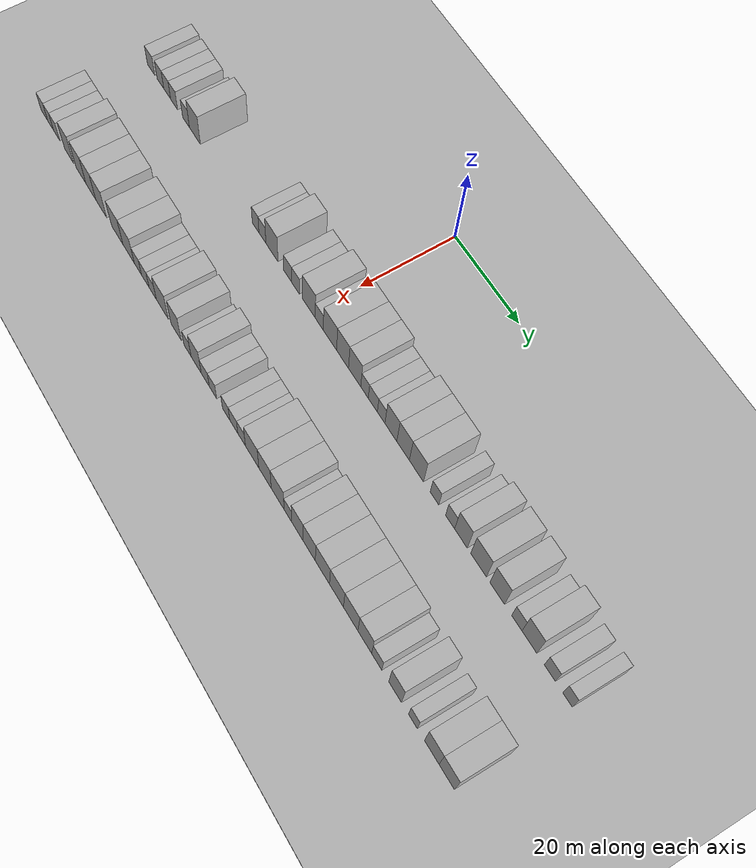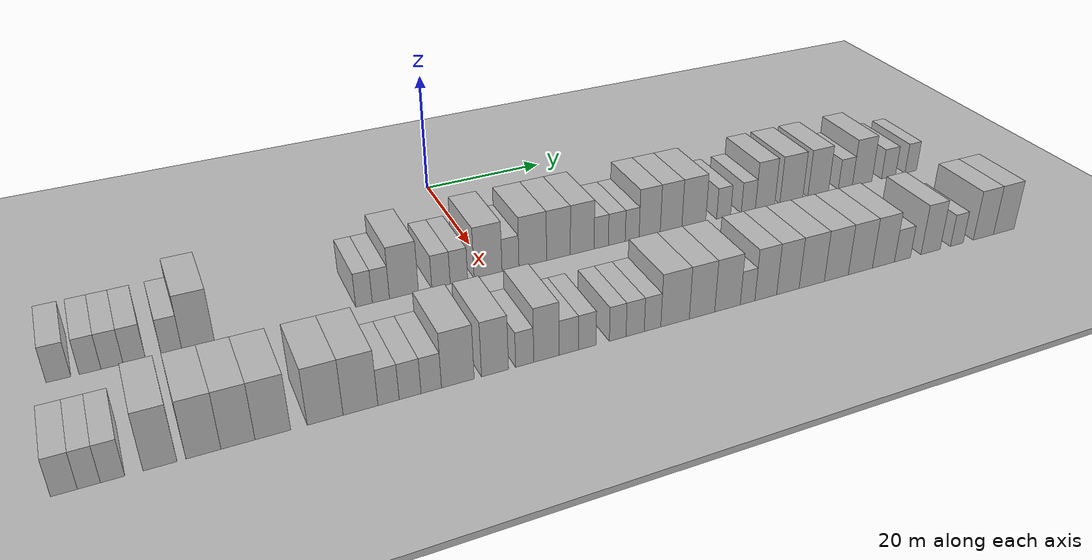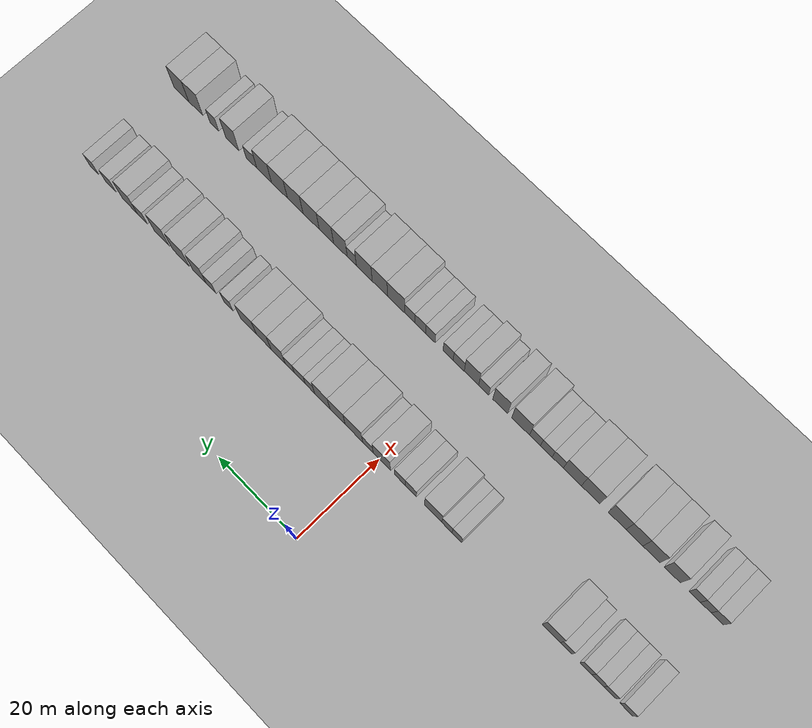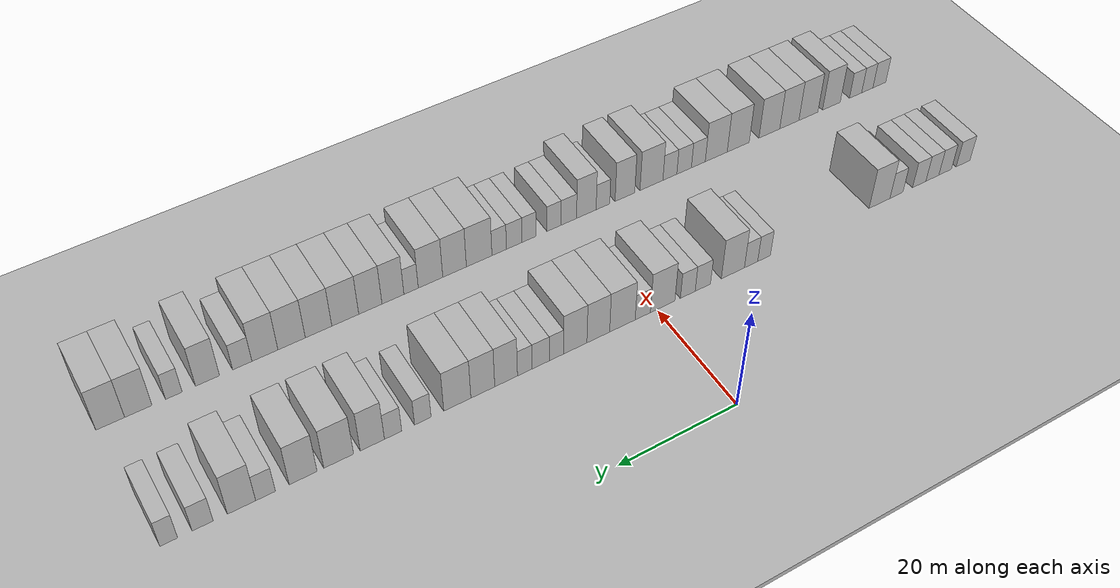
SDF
<sdf version="1.6">
 <world name="default">
  <include><name>ground_plane_1</name><uri>model://HANNAS_ground_plane</uri></include>
  <include>
   <name>ground_plane_2</name>
   <uri>model://HANNAS_ground_plane</uri>
   <pose>100 0 0  0 0 0</pose>
  </include>
  <model name="building_33">
   <static>1</static>
   <pose>25.0000 -59.6118 0 0.000000 0.000000 0.000000</pose>
   <link name="link">
    <pose>0 0 3.00 0 0 0</pose>
    <collision name="collision"><geometry><box><size>10.0000 2.9667 6.0000</size></box></geometry></collision>
    <visual name="visual">
     <cast_shadows>0</cast_shadows>
     <geometry><box><size>10.0000 2.9667 6.0000</size></box></geometry>
     <material>
      <script>
       <uri>model://HANNAS_wall/materials/scripts</uri>
       <uri>model://HANNAS_wall/materials/textures</uri>
       <name>vrc/HANNAS_wall</name>
      </script>
     </material>
    </visual>
   </link>
  </model>
  <model name="building_34">
   <static>1</static>
   <pose>25.0000 -55.7953 0 0.000000 0.000000 0.000000</pose>
   <link name="link">
    <pose>0 0 3.00 0 0 0</pose>
    <collision name="collision"><geometry><box><size>10.0000 2.6663 6.0000</size></box></geometry></collision>
    <visual name="visual">
     <cast_shadows>0</cast_shadows>
     <geometry><box><size>10.0000 2.6663 6.0000</size></box></geometry>
     <material>
      <script>
       <uri>model://HANNAS_wall/materials/scripts</uri>
       <uri>model://HANNAS_wall/materials/textures</uri>
       <name>vrc/HANNAS_wall</name>
      </script>
     </material>
    </visual>
   </link>
  </model>
  <model name="building_35">
   <static>1</static>
   <pose>25.0000 -53.0980 0 0.000000 0.000000 0.000000</pose>
   <link name="link">
    <pose>0 0 3.00 0 0 0</pose>
    <collision name="collision"><geometry><box><size>10.0000 2.7282 6.0000</size></box></geometry></collision>
    <visual name="visual">
     <cast_shadows>0</cast_shadows>
     <geometry><box><size>10.0000 2.7282 6.0000</size></box></geometry>
     <material>
      <script>
       <uri>model://HANNAS_wall/materials/scripts</uri>
       <uri>model://HANNAS_wall/materials/textures</uri>
       <name>vrc/HANNAS_wall</name>
      </script>
     </material>
    </visual>
   </link>
  </model>
  <model name="building_36">
   <static>1</static>
   <pose>25.0000 -50.3425 0 0.000000 0.000000 0.000000</pose>
   <link name="link">
    <pose>0 0 3.00 0 0 0</pose>
    <collision name="collision"><geometry><box><size>10.0000 2.7828 6.0000</size></box></geometry></collision>
    <visual name="visual">
     <cast_shadows>0</cast_shadows>
     <geometry><box><size>10.0000 2.7828 6.0000</size></box></geometry>
     <material>
      <script>
       <uri>model://HANNAS_wall/materials/scripts</uri>
       <uri>model://HANNAS_wall/materials/textures</uri>
       <name>vrc/HANNAS_wall</name>
      </script>
     </material>
    </visual>
   </link>
  </model>
  <model name="building_37">
   <static>1</static>
   <pose>25.0000 -45.6284 0 0.000000 0.000000 0.000000</pose>
   <link name="link">
    <pose>0 0 3.00 0 0 0</pose>
    <collision name="collision"><geometry><box><size>10.0000 2.6455 6.0000</size></box></geometry></collision>
    <visual name="visual">
     <cast_shadows>0</cast_shadows>
     <geometry><box><size>10.0000 2.6455 6.0000</size></box></geometry>
     <material>
      <script>
       <uri>model://HANNAS_wall/materials/scripts</uri>
       <uri>model://HANNAS_wall/materials/textures</uri>
       <name>vrc/HANNAS_wall</name>
      </script>
     </material>
    </visual>
   </link>
  </model>
  <model name="building_38">
   <static>1</static>
   <pose>25.0000 -42.1798 0 0.000000 0.000000 0.000000</pose>
   <link name="link">
    <pose>0 0 4.50 0 0 0</pose>
    <collision name="collision"><geometry><box><size>10.0000 4.2517 9.0000</size></box></geometry></collision>
    <visual name="visual">
     <cast_shadows>0</cast_shadows>
     <geometry><box><size>10.0000 4.2517 9.0000</size></box></geometry>
     <material>
      <script>
       <uri>model://HANNAS_wall/materials/scripts</uri>
       <uri>model://HANNAS_wall/materials/textures</uri>
       <name>vrc/HANNAS_wall</name>
      </script>
     </material>
    </visual>
   </link>
  </model>
  <model name="building_39">
   <static>1</static>
   <pose>25.0000 -19.4496 0 0.000000 0.000000 0.000000</pose>
   <link name="link">
    <pose>0 0 3.00 0 0 0</pose>
    <collision name="collision"><geometry><box><size>10.0000 2.4029 6.0000</size></box></geometry></collision>
    <visual name="visual">
     <cast_shadows>0</cast_shadows>
     <geometry><box><size>10.0000 2.4029 6.0000</size></box></geometry>
     <material>
      <script>
       <uri>model://HANNAS_wall/materials/scripts</uri>
       <uri>model://HANNAS_wall/materials/textures</uri>
       <name>vrc/HANNAS_wall</name>
      </script>
     </material>
    </visual>
   </link>
  </model>
  <model name="building_40">
   <static>1</static>
   <pose>25.0000 -16.9956 0 0.000000 0.000000 0.000000</pose>
   <link name="link">
    <pose>0 0 3.00 0 0 0</pose>
    <collision name="collision"><geometry><box><size>10.0000 2.5051 6.0000</size></box></geometry></collision>
    <visual name="visual">
     <cast_shadows>0</cast_shadows>
     <geometry><box><size>10.0000 2.5051 6.0000</size></box></geometry>
     <material>
      <script>
       <uri>model://HANNAS_wall/materials/scripts</uri>
       <uri>model://HANNAS_wall/materials/textures</uri>
       <name>vrc/HANNAS_wall</name>
      </script>
     </material>
    </visual>
   </link>
  </model>
  <model name="building_41">
   <static>1</static>
   <pose>25.0000 -13.5917 0 0.000000 0.000000 0.000000</pose>
   <link name="link">
    <pose>0 0 4.50 0 0 0</pose>
    <collision name="collision"><geometry><box><size>10.0000 4.3028 9.0000</size></box></geometry></collision>
    <visual name="visual">
     <cast_shadows>0</cast_shadows>
     <geometry><box><size>10.0000 4.3028 9.0000</size></box></geometry>
     <material>
      <script>
       <uri>model://HANNAS_wall/materials/scripts</uri>
       <uri>model://HANNAS_wall/materials/textures</uri>
       <name>vrc/HANNAS_wall</name>
      </script>
     </material>
    </visual>
   </link>
  </model>
  <model name="building_42">
   <static>1</static>
   <pose>25.0000 -8.0424 0 0.000000 0.000000 0.000000</pose>
   <link name="link">
    <pose>0 0 3.00 0 0 0</pose>
    <collision name="collision"><geometry><box><size>10.0000 2.7958 6.0000</size></box></geometry></collision>
    <visual name="visual">
     <cast_shadows>0</cast_shadows>
     <geometry><box><size>10.0000 2.7958 6.0000</size></box></geometry>
     <material>
      <script>
       <uri>model://HANNAS_wall/materials/scripts</uri>
       <uri>model://HANNAS_wall/materials/textures</uri>
       <name>vrc/HANNAS_wall</name>
      </script>
     </material>
    </visual>
   </link>
  </model>
  <model name="building_43">
   <static>1</static>
   <pose>25.0000 -5.2995 0 0.000000 0.000000 0.000000</pose>
   <link name="link">
    <pose>0 0 3.00 0 0 0</pose>
    <collision name="collision"><geometry><box><size>10.0000 2.6900 6.0000</size></box></geometry></collision>
    <visual name="visual">
     <cast_shadows>0</cast_shadows>
     <geometry><box><size>10.0000 2.6900 6.0000</size></box></geometry>
     <material>
      <script>
       <uri>model://HANNAS_wall/materials/scripts</uri>
       <uri>model://HANNAS_wall/materials/textures</uri>
       <name>vrc/HANNAS_wall</name>
      </script>
     </material>
    </visual>
   </link>
  </model>
  <model name="building_44">
   <static>1</static>
   <pose>25.0000 -0.7623 0 0.000000 0.000000 0.000000</pose>
   <link name="link">
    <pose>0 0 4.50 0 0 0</pose>
    <collision name="collision"><geometry><box><size>10.0000 4.3845 9.0000</size></box></geometry></collision>
    <visual name="visual">
     <cast_shadows>0</cast_shadows>
     <geometry><box><size>10.0000 4.3845 9.0000</size></box></geometry>
     <material>
      <script>
       <uri>model://HANNAS_wall/materials/scripts</uri>
       <uri>model://HANNAS_wall/materials/textures</uri>
       <name>vrc/HANNAS_wall</name>
      </script>
     </material>
    </visual>
   </link>
  </model>
  <model name="building_45">
   <static>1</static>
   <pose>25.0000 2.7781 0 0.000000 0.000000 0.000000</pose>
   <link name="link">
    <pose>0 0 3.00 0 0 0</pose>
    <collision name="collision"><geometry><box><size>10.0000 2.6963 6.0000</size></box></geometry></collision>
    <visual name="visual">
     <cast_shadows>0</cast_shadows>
     <geometry><box><size>10.0000 2.6963 6.0000</size></box></geometry>
     <material>
      <script>
       <uri>model://HANNAS_wall/materials/scripts</uri>
       <uri>model://HANNAS_wall/materials/textures</uri>
       <name>vrc/HANNAS_wall</name>
      </script>
     </material>
    </visual>
   </link>
  </model>
  <model name="building_46">
   <static>1</static>
   <pose>25.0000 6.3581 0 0.000000 0.000000 0.000000</pose>
   <link name="link">
    <pose>0 0 4.50 0 0 0</pose>
    <collision name="collision"><geometry><box><size>10.0000 4.4637 9.0000</size></box></geometry></collision>
    <visual name="visual">
     <cast_shadows>0</cast_shadows>
     <geometry><box><size>10.0000 4.4637 9.0000</size></box></geometry>
     <material>
      <script>
       <uri>model://HANNAS_wall/materials/scripts</uri>
       <uri>model://HANNAS_wall/materials/textures</uri>
       <name>vrc/HANNAS_wall</name>
      </script>
     </material>
    </visual>
   </link>
  </model>
  <model name="building_47">
   <static>1</static>
   <pose>25.0000 10.5509 0 0.000000 0.000000 0.000000</pose>
   <link name="link">
    <pose>0 0 4.50 0 0 0</pose>
    <collision name="collision"><geometry><box><size>10.0000 3.9219 9.0000</size></box></geometry></collision>
    <visual name="visual">
     <cast_shadows>0</cast_shadows>
     <geometry><box><size>10.0000 3.9219 9.0000</size></box></geometry>
     <material>
      <script>
       <uri>model://HANNAS_wall/materials/scripts</uri>
       <uri>model://HANNAS_wall/materials/textures</uri>
       <name>vrc/HANNAS_wall</name>
      </script>
     </material>
    </visual>
   </link>
  </model>
  <model name="building_48">
   <static>1</static>
   <pose>25.0000 14.4988 0 0.000000 0.000000 0.000000</pose>
   <link name="link">
    <pose>0 0 4.50 0 0 0</pose>
    <collision name="collision"><geometry><box><size>10.0000 3.9739 9.0000</size></box></geometry></collision>
    <visual name="visual">
     <cast_shadows>0</cast_shadows>
     <geometry><box><size>10.0000 3.9739 9.0000</size></box></geometry>
     <material>
      <script>
       <uri>model://HANNAS_wall/materials/scripts</uri>
       <uri>model://HANNAS_wall/materials/textures</uri>
       <name>vrc/HANNAS_wall</name>
      </script>
     </material>
    </visual>
   </link>
  </model>
  <model name="building_49">
   <static>1</static>
   <pose>25.0000 17.6950 0 0.000000 0.000000 0.000000</pose>
   <link name="link">
    <pose>0 0 3.00 0 0 0</pose>
    <collision name="collision"><geometry><box><size>10.0000 2.4185 6.0000</size></box></geometry></collision>
    <visual name="visual">
     <cast_shadows>0</cast_shadows>
     <geometry><box><size>10.0000 2.4185 6.0000</size></box></geometry>
     <material>
      <script>
       <uri>model://HANNAS_wall/materials/scripts</uri>
       <uri>model://HANNAS_wall/materials/textures</uri>
       <name>vrc/HANNAS_wall</name>
      </script>
     </material>
    </visual>
   </link>
  </model>
  <model name="building_50">
   <static>1</static>
   <pose>25.0000 20.3509 0 0.000000 0.000000 0.000000</pose>
   <link name="link">
    <pose>0 0 3.00 0 0 0</pose>
    <collision name="collision"><geometry><box><size>10.0000 2.8933 6.0000</size></box></geometry></collision>
    <visual name="visual">
     <cast_shadows>0</cast_shadows>
     <geometry><box><size>10.0000 2.8933 6.0000</size></box></geometry>
     <material>
      <script>
       <uri>model://HANNAS_wall/materials/scripts</uri>
       <uri>model://HANNAS_wall/materials/textures</uri>
       <name>vrc/HANNAS_wall</name>
      </script>
     </material>
    </visual>
   </link>
  </model>
  <model name="building_51">
   <static>1</static>
   <pose>25.0000 22.9984 0 0.000000 0.000000 0.000000</pose>
   <link name="link">
    <pose>0 0 3.00 0 0 0</pose>
    <collision name="collision"><geometry><box><size>10.0000 2.4018 6.0000</size></box></geometry></collision>
    <visual name="visual">
     <cast_shadows>0</cast_shadows>
     <geometry><box><size>10.0000 2.4018 6.0000</size></box></geometry>
     <material>
      <script>
       <uri>model://HANNAS_wall/materials/scripts</uri>
       <uri>model://HANNAS_wall/materials/textures</uri>
       <name>vrc/HANNAS_wall</name>
      </script>
     </material>
    </visual>
   </link>
  </model>
  <model name="building_52">
   <static>1</static>
   <pose>25.0000 26.0617 0 0.000000 0.000000 0.000000</pose>
   <link name="link">
    <pose>0 0 4.50 0 0 0</pose>
    <collision name="collision"><geometry><box><size>10.0000 3.7248 9.0000</size></box></geometry></collision>
    <visual name="visual">
     <cast_shadows>0</cast_shadows>
     <geometry><box><size>10.0000 3.7248 9.0000</size></box></geometry>
     <material>
      <script>
       <uri>model://HANNAS_wall/materials/scripts</uri>
       <uri>model://HANNAS_wall/materials/textures</uri>
       <name>vrc/HANNAS_wall</name>
      </script>
     </material>
    </visual>
   </link>
  </model>
  <model name="building_53">
   <static>1</static>
   <pose>25.0000 29.8570 0 0.000000 0.000000 0.000000</pose>
   <link name="link">
    <pose>0 0 4.50 0 0 0</pose>
    <collision name="collision"><geometry><box><size>10.0000 3.8659 9.0000</size></box></geometry></collision>
    <visual name="visual">
     <cast_shadows>0</cast_shadows>
     <geometry><box><size>10.0000 3.8659 9.0000</size></box></geometry>
     <material>
      <script>
       <uri>model://HANNAS_wall/materials/scripts</uri>
       <uri>model://HANNAS_wall/materials/textures</uri>
       <name>vrc/HANNAS_wall</name>
      </script>
     </material>
    </visual>
   </link>
  </model>
  <model name="building_54">
   <static>1</static>
   <pose>25.0000 33.9565 0 0.000000 0.000000 0.000000</pose>
   <link name="link">
    <pose>0 0 4.50 0 0 0</pose>
    <collision name="collision"><geometry><box><size>10.0000 4.3330 9.0000</size></box></geometry></collision>
    <visual name="visual">
     <cast_shadows>0</cast_shadows>
     <geometry><box><size>10.0000 4.3330 9.0000</size></box></geometry>
     <material>
      <script>
       <uri>model://HANNAS_wall/materials/scripts</uri>
       <uri>model://HANNAS_wall/materials/textures</uri>
       <name>vrc/HANNAS_wall</name>
      </script>
     </material>
    </visual>
   </link>
  </model>
  <model name="building_55">
   <static>1</static>
   <pose>25.0000 39.4166 0 0.000000 0.000000 0.000000</pose>
   <link name="link">
    <pose>0 0 3.00 0 0 0</pose>
    <collision name="collision"><geometry><box><size>10.0000 2.5872 6.0000</size></box></geometry></collision>
    <visual name="visual">
     <cast_shadows>0</cast_shadows>
     <geometry><box><size>10.0000 2.5872 6.0000</size></box></geometry>
     <material>
      <script>
       <uri>model://HANNAS_wall/materials/scripts</uri>
       <uri>model://HANNAS_wall/materials/textures</uri>
       <name>vrc/HANNAS_wall</name>
      </script>
     </material>
    </visual>
   </link>
  </model>
  <model name="building_56">
   <static>1</static>
   <pose>25.0000 44.0428 0 0.000000 0.000000 0.000000</pose>
   <link name="link">
    <pose>0 0 3.00 0 0 0</pose>
    <collision name="collision"><geometry><box><size>10.0000 2.6652 6.0000</size></box></geometry></collision>
    <visual name="visual">
     <cast_shadows>0</cast_shadows>
     <geometry><box><size>10.0000 2.6652 6.0000</size></box></geometry>
     <material>
      <script>
       <uri>model://HANNAS_wall/materials/scripts</uri>
       <uri>model://HANNAS_wall/materials/textures</uri>
       <name>vrc/HANNAS_wall</name>
      </script>
     </material>
    </visual>
   </link>
  </model>
  <model name="building_57">
   <static>1</static>
   <pose>25.0000 47.2270 0 0.000000 0.000000 0.000000</pose>
   <link name="link">
    <pose>0 0 4.50 0 0 0</pose>
    <collision name="collision"><geometry><box><size>10.0000 3.7030 9.0000</size></box></geometry></collision>
    <visual name="visual">
     <cast_shadows>0</cast_shadows>
     <geometry><box><size>10.0000 3.7030 9.0000</size></box></geometry>
     <material>
      <script>
       <uri>model://HANNAS_wall/materials/scripts</uri>
       <uri>model://HANNAS_wall/materials/textures</uri>
       <name>vrc/HANNAS_wall</name>
      </script>
     </material>
    </visual>
   </link>
  </model>
  <model name="building_58">
   <static>1</static>
   <pose>25.0000 52.3160 0 0.000000 0.000000 0.000000</pose>
   <link name="link">
    <pose>0 0 4.50 0 0 0</pose>
    <collision name="collision"><geometry><box><size>10.0000 4.4752 9.0000</size></box></geometry></collision>
    <visual name="visual">
     <cast_shadows>0</cast_shadows>
     <geometry><box><size>10.0000 4.4752 9.0000</size></box></geometry>
     <material>
      <script>
       <uri>model://HANNAS_wall/materials/scripts</uri>
       <uri>model://HANNAS_wall/materials/textures</uri>
       <name>vrc/HANNAS_wall</name>
      </script>
     </material>
    </visual>
   </link>
  </model>
  <model name="building_59">
   <static>1</static>
   <pose>25.0000 57.6080 0 0.000000 0.000000 0.000000</pose>
   <link name="link">
    <pose>0 0 4.50 0 0 0</pose>
    <collision name="collision"><geometry><box><size>10.0000 4.1088 9.0000</size></box></geometry></collision>
    <visual name="visual">
     <cast_shadows>0</cast_shadows>
     <geometry><box><size>10.0000 4.1088 9.0000</size></box></geometry>
     <material>
      <script>
       <uri>model://HANNAS_wall/materials/scripts</uri>
       <uri>model://HANNAS_wall/materials/textures</uri>
       <name>vrc/HANNAS_wall</name>
      </script>
     </material>
    </visual>
   </link>
  </model>
  <model name="building_60">
   <static>1</static>
   <pose>25.0000 63.0838 0 0.000000 0.000000 0.000000</pose>
   <link name="link">
    <pose>0 0 3.00 0 0 0</pose>
    <collision name="collision"><geometry><box><size>10.0000 2.8429 6.0000</size></box></geometry></collision>
    <visual name="visual">
     <cast_shadows>0</cast_shadows>
     <geometry><box><size>10.0000 2.8429 6.0000</size></box></geometry>
     <material>
      <script>
       <uri>model://HANNAS_wall/materials/scripts</uri>
       <uri>model://HANNAS_wall/materials/textures</uri>
       <name>vrc/HANNAS_wall</name>
      </script>
     </material>
    </visual>
   </link>
  </model>
  <model name="building_61">
   <static>1</static>
   <pose>25.0000 66.5258 0 0.000000 0.000000 0.000000</pose>
   <link name="link">
    <pose>0 0 4.50 0 0 0</pose>
    <collision name="collision"><geometry><box><size>10.0000 4.0410 9.0000</size></box></geometry></collision>
    <visual name="visual">
     <cast_shadows>0</cast_shadows>
     <geometry><box><size>10.0000 4.0410 9.0000</size></box></geometry>
     <material>
      <script>
       <uri>model://HANNAS_wall/materials/scripts</uri>
       <uri>model://HANNAS_wall/materials/textures</uri>
       <name>vrc/HANNAS_wall</name>
      </script>
     </material>
    </visual>
   </link>
  </model>
  <model name="building_62">
   <static>1</static>
   <pose>25.0000 72.0242 0 0.000000 0.000000 0.000000</pose>
   <link name="link">
    <pose>0 0 3.00 0 0 0</pose>
    <collision name="collision"><geometry><box><size>10.0000 2.9557 6.0000</size></box></geometry></collision>
    <visual name="visual">
     <cast_shadows>0</cast_shadows>
     <geometry><box><size>10.0000 2.9557 6.0000</size></box></geometry>
     <material>
      <script>
       <uri>model://HANNAS_wall/materials/scripts</uri>
       <uri>model://HANNAS_wall/materials/textures</uri>
       <name>vrc/HANNAS_wall</name>
      </script>
     </material>
    </visual>
   </link>
  </model>
  <model name="building_63">
   <static>1</static>
   <pose>25.0000 76.7353 0 0.000000 0.000000 0.000000</pose>
   <link name="link">
    <pose>0 0 3.00 0 0 0</pose>
    <collision name="collision"><geometry><box><size>10.0000 2.4665 6.0000</size></box></geometry></collision>
    <visual name="visual">
     <cast_shadows>0</cast_shadows>
     <geometry><box><size>10.0000 2.4665 6.0000</size></box></geometry>
     <material>
      <script>
       <uri>model://HANNAS_wall/materials/scripts</uri>
       <uri>model://HANNAS_wall/materials/textures</uri>
       <name>vrc/HANNAS_wall</name>
      </script>
     </material>
    </visual>
   </link>
  </model>
  <model name="building_133">
   <static>1</static>
   <pose>47.0000 -60.3634 0 0.000000 0.000000 0.000000</pose>
   <link name="link">
    <pose>0 0 3.00 0 0 0</pose>
    <collision name="collision"><geometry><box><size>10.0000 2.8357 6.0000</size></box></geometry></collision>
    <visual name="visual">
     <cast_shadows>0</cast_shadows>
     <geometry><box><size>10.0000 2.8357 6.0000</size></box></geometry>
     <material>
      <script>
       <uri>model://HANNAS_wall/materials/scripts</uri>
       <uri>model://HANNAS_wall/materials/textures</uri>
       <name>vrc/HANNAS_wall</name>
      </script>
     </material>
    </visual>
   </link>
  </model>
  <model name="building_134">
   <static>1</static>
   <pose>47.0000 -57.7162 0 0.000000 0.000000 0.000000</pose>
   <link name="link">
    <pose>0 0 3.00 0 0 0</pose>
    <collision name="collision"><geometry><box><size>10.0000 2.4586 6.0000</size></box></geometry></collision>
    <visual name="visual">
     <cast_shadows>0</cast_shadows>
     <geometry><box><size>10.0000 2.4586 6.0000</size></box></geometry>
     <material>
      <script>
       <uri>model://HANNAS_wall/materials/scripts</uri>
       <uri>model://HANNAS_wall/materials/textures</uri>
       <name>vrc/HANNAS_wall</name>
      </script>
     </material>
    </visual>
   </link>
  </model>
  <model name="building_135">
   <static>1</static>
   <pose>47.0000 -55.1694 0 0.000000 0.000000 0.000000</pose>
   <link name="link">
    <pose>0 0 3.00 0 0 0</pose>
    <collision name="collision"><geometry><box><size>10.0000 2.6351 6.0000</size></box></geometry></collision>
    <visual name="visual">
     <cast_shadows>0</cast_shadows>
     <geometry><box><size>10.0000 2.6351 6.0000</size></box></geometry>
     <material>
      <script>
       <uri>model://HANNAS_wall/materials/scripts</uri>
       <uri>model://HANNAS_wall/materials/textures</uri>
       <name>vrc/HANNAS_wall</name>
      </script>
     </material>
    </visual>
   </link>
  </model>
  <model name="building_136">
   <static>1</static>
   <pose>47.0000 -49.9567 0 0.000000 0.000000 0.000000</pose>
   <link name="link">
    <pose>0 0 4.50 0 0 0</pose>
    <collision name="collision"><geometry><box><size>10.0000 3.7903 9.0000</size></box></geometry></collision>
    <visual name="visual">
     <cast_shadows>0</cast_shadows>
     <geometry><box><size>10.0000 3.7903 9.0000</size></box></geometry>
     <material>
      <script>
       <uri>model://HANNAS_wall/materials/scripts</uri>
       <uri>model://HANNAS_wall/materials/textures</uri>
       <name>vrc/HANNAS_wall</name>
      </script>
     </material>
    </visual>
   </link>
  </model>
  <model name="building_137">
   <static>1</static>
   <pose>47.0000 -45.0564 0 0.000000 0.000000 0.000000</pose>
   <link name="link">
    <pose>0 0 4.50 0 0 0</pose>
    <collision name="collision"><geometry><box><size>10.0000 4.0104 9.0000</size></box></geometry></collision>
    <visual name="visual">
     <cast_shadows>0</cast_shadows>
     <geometry><box><size>10.0000 4.0104 9.0000</size></box></geometry>
     <material>
      <script>
       <uri>model://HANNAS_wall/materials/scripts</uri>
       <uri>model://HANNAS_wall/materials/textures</uri>
       <name>vrc/HANNAS_wall</name>
      </script>
     </material>
    </visual>
   </link>
  </model>
  <model name="building_138">
   <static>1</static>
   <pose>47.0000 -41.0551 0 0.000000 0.000000 0.000000</pose>
   <link name="link">
    <pose>0 0 4.50 0 0 0</pose>
    <collision name="collision"><geometry><box><size>10.0000 3.9922 9.0000</size></box></geometry></collision>
    <visual name="visual">
     <cast_shadows>0</cast_shadows>
     <geometry><box><size>10.0000 3.9922 9.0000</size></box></geometry>
     <material>
      <script>
       <uri>model://HANNAS_wall/materials/scripts</uri>
       <uri>model://HANNAS_wall/materials/textures</uri>
       <name>vrc/HANNAS_wall</name>
      </script>
     </material>
    </visual>
   </link>
  </model>
  <model name="building_139">
   <static>1</static>
   <pose>47.0000 -36.9221 0 0.000000 0.000000 0.000000</pose>
   <link name="link">
    <pose>0 0 4.50 0 0 0</pose>
    <collision name="collision"><geometry><box><size>10.0000 4.2738 9.0000</size></box></geometry></collision>
    <visual name="visual">
     <cast_shadows>0</cast_shadows>
     <geometry><box><size>10.0000 4.2738 9.0000</size></box></geometry>
     <material>
      <script>
       <uri>model://HANNAS_wall/materials/scripts</uri>
       <uri>model://HANNAS_wall/materials/textures</uri>
       <name>vrc/HANNAS_wall</name>
      </script>
     </material>
    </visual>
   </link>
  </model>
  <model name="building_140">
   <static>1</static>
   <pose>47.0000 -30.5642 0 0.000000 0.000000 0.000000</pose>
   <link name="link">
    <pose>0 0 4.50 0 0 0</pose>
    <collision name="collision"><geometry><box><size>10.0000 4.4421 9.0000</size></box></geometry></collision>
    <visual name="visual">
     <cast_shadows>0</cast_shadows>
     <geometry><box><size>10.0000 4.4421 9.0000</size></box></geometry>
     <material>
      <script>
       <uri>model://HANNAS_wall/materials/scripts</uri>
       <uri>model://HANNAS_wall/materials/textures</uri>
       <name>vrc/HANNAS_wall</name>
      </script>
     </material>
    </visual>
   </link>
  </model>
  <model name="building_141">
   <static>1</static>
   <pose>47.0000 -26.1441 0 0.000000 0.000000 0.000000</pose>
   <link name="link">
    <pose>0 0 4.50 0 0 0</pose>
    <collision name="collision"><geometry><box><size>10.0000 4.3980 9.0000</size></box></geometry></collision>
    <visual name="visual">
     <cast_shadows>0</cast_shadows>
     <geometry><box><size>10.0000 4.3980 9.0000</size></box></geometry>
     <material>
      <script>
       <uri>model://HANNAS_wall/materials/scripts</uri>
       <uri>model://HANNAS_wall/materials/textures</uri>
       <name>vrc/HANNAS_wall</name>
      </script>
     </material>
    </visual>
   </link>
  </model>
  <model name="building_142">
   <static>1</static>
   <pose>47.0000 -22.5758 0 0.000000 0.000000 0.000000</pose>
   <link name="link">
    <pose>0 0 3.00 0 0 0</pose>
    <collision name="collision"><geometry><box><size>10.0000 2.7385 6.0000</size></box></geometry></collision>
    <visual name="visual">
     <cast_shadows>0</cast_shadows>
     <geometry><box><size>10.0000 2.7385 6.0000</size></box></geometry>
     <material>
      <script>
       <uri>model://HANNAS_wall/materials/scripts</uri>
       <uri>model://HANNAS_wall/materials/textures</uri>
       <name>vrc/HANNAS_wall</name>
      </script>
     </material>
    </visual>
   </link>
  </model>
  <model name="building_143">
   <static>1</static>
   <pose>47.0000 -19.7795 0 0.000000 0.000000 0.000000</pose>
   <link name="link">
    <pose>0 0 3.00 0 0 0</pose>
    <collision name="collision"><geometry><box><size>10.0000 2.8541 6.0000</size></box></geometry></collision>
    <visual name="visual">
     <cast_shadows>0</cast_shadows>
     <geometry><box><size>10.0000 2.8541 6.0000</size></box></geometry>
     <material>
      <script>
       <uri>model://HANNAS_wall/materials/scripts</uri>
       <uri>model://HANNAS_wall/materials/textures</uri>
       <name>vrc/HANNAS_wall</name>
      </script>
     </material>
    </visual>
   </link>
  </model>
  <model name="building_144">
   <static>1</static>
   <pose>47.0000 -16.9959 0 0.000000 0.000000 0.000000</pose>
   <link name="link">
    <pose>0 0 3.00 0 0 0</pose>
    <collision name="collision"><geometry><box><size>10.0000 2.7132 6.0000</size></box></geometry></collision>
    <visual name="visual">
     <cast_shadows>0</cast_shadows>
     <geometry><box><size>10.0000 2.7132 6.0000</size></box></geometry>
     <material>
      <script>
       <uri>model://HANNAS_wall/materials/scripts</uri>
       <uri>model://HANNAS_wall/materials/textures</uri>
       <name>vrc/HANNAS_wall</name>
      </script>
     </material>
    </visual>
   </link>
  </model>
  <model name="building_145">
   <static>1</static>
   <pose>47.0000 -13.4322 0 0.000000 0.000000 0.000000</pose>
   <link name="link">
    <pose>0 0 4.50 0 0 0</pose>
    <collision name="collision"><geometry><box><size>10.0000 4.4141 9.0000</size></box></geometry></collision>
    <visual name="visual">
     <cast_shadows>0</cast_shadows>
     <geometry><box><size>10.0000 4.4141 9.0000</size></box></geometry>
     <material>
      <script>
       <uri>model://HANNAS_wall/materials/scripts</uri>
       <uri>model://HANNAS_wall/materials/textures</uri>
       <name>vrc/HANNAS_wall</name>
      </script>
     </material>
    </visual>
   </link>
  </model>
  <model name="building_146">
   <static>1</static>
   <pose>47.0000 -8.3587 0 0.000000 0.000000 0.000000</pose>
   <link name="link">
    <pose>0 0 4.50 0 0 0</pose>
    <collision name="collision"><geometry><box><size>10.0000 3.7330 9.0000</size></box></geometry></collision>
    <visual name="visual">
     <cast_shadows>0</cast_shadows>
     <geometry><box><size>10.0000 3.7330 9.0000</size></box></geometry>
     <material>
      <script>
       <uri>model://HANNAS_wall/materials/scripts</uri>
       <uri>model://HANNAS_wall/materials/textures</uri>
       <name>vrc/HANNAS_wall</name>
      </script>
     </material>
    </visual>
   </link>
  </model>
  <model name="building_147">
   <static>1</static>
   <pose>47.0000 -4.2167 0 0.000000 0.000000 0.000000</pose>
   <link name="link">
    <pose>0 0 3.00 0 0 0</pose>
    <collision name="collision"><geometry><box><size>10.0000 2.5510 6.0000</size></box></geometry></collision>
    <visual name="visual">
     <cast_shadows>0</cast_shadows>
     <geometry><box><size>10.0000 2.5510 6.0000</size></box></geometry>
     <material>
      <script>
       <uri>model://HANNAS_wall/materials/scripts</uri>
       <uri>model://HANNAS_wall/materials/textures</uri>
       <name>vrc/HANNAS_wall</name>
      </script>
     </material>
    </visual>
   </link>
  </model>
  <model name="building_148">
   <static>1</static>
   <pose>47.0000 -1.1264 0 0.000000 0.000000 0.000000</pose>
   <link name="link">
    <pose>0 0 4.50 0 0 0</pose>
    <collision name="collision"><geometry><box><size>10.0000 3.6296 9.0000</size></box></geometry></collision>
    <visual name="visual">
     <cast_shadows>0</cast_shadows>
     <geometry><box><size>10.0000 3.6296 9.0000</size></box></geometry>
     <material>
      <script>
       <uri>model://HANNAS_wall/materials/scripts</uri>
       <uri>model://HANNAS_wall/materials/textures</uri>
       <name>vrc/HANNAS_wall</name>
      </script>
     </material>
    </visual>
   </link>
  </model>
  <model name="building_149">
   <static>1</static>
   <pose>47.0000 2.1041 0 0.000000 0.000000 0.000000</pose>
   <link name="link">
    <pose>0 0 3.00 0 0 0</pose>
    <collision name="collision"><geometry><box><size>10.0000 2.8314 6.0000</size></box></geometry></collision>
    <visual name="visual">
     <cast_shadows>0</cast_shadows>
     <geometry><box><size>10.0000 2.8314 6.0000</size></box></geometry>
     <material>
      <script>
       <uri>model://HANNAS_wall/materials/scripts</uri>
       <uri>model://HANNAS_wall/materials/textures</uri>
       <name>vrc/HANNAS_wall</name>
      </script>
     </material>
    </visual>
   </link>
  </model>
  <model name="building_150">
   <static>1</static>
   <pose>47.0000 4.8058 0 0.000000 0.000000 0.000000</pose>
   <link name="link">
    <pose>0 0 3.00 0 0 0</pose>
    <collision name="collision"><geometry><box><size>10.0000 2.5720 6.0000</size></box></geometry></collision>
    <visual name="visual">
     <cast_shadows>0</cast_shadows>
     <geometry><box><size>10.0000 2.5720 6.0000</size></box></geometry>
     <material>
      <script>
       <uri>model://HANNAS_wall/materials/scripts</uri>
       <uri>model://HANNAS_wall/materials/textures</uri>
       <name>vrc/HANNAS_wall</name>
      </script>
     </material>
    </visual>
   </link>
  </model>
  <model name="building_151">
   <static>1</static>
   <pose>47.0000 9.3434 0 0.000000 0.000000 0.000000</pose>
   <link name="link">
    <pose>0 0 3.00 0 0 0</pose>
    <collision name="collision"><geometry><box><size>10.0000 2.5032 6.0000</size></box></geometry></collision>
    <visual name="visual">
     <cast_shadows>0</cast_shadows>
     <geometry><box><size>10.0000 2.5032 6.0000</size></box></geometry>
     <material>
      <script>
       <uri>model://HANNAS_wall/materials/scripts</uri>
       <uri>model://HANNAS_wall/materials/textures</uri>
       <name>vrc/HANNAS_wall</name>
      </script>
     </material>
    </visual>
   </link>
  </model>
  <model name="building_152">
   <static>1</static>
   <pose>47.0000 11.9845 0 0.000000 0.000000 0.000000</pose>
   <link name="link">
    <pose>0 0 3.00 0 0 0</pose>
    <collision name="collision"><geometry><box><size>10.0000 2.7790 6.0000</size></box></geometry></collision>
    <visual name="visual">
     <cast_shadows>0</cast_shadows>
     <geometry><box><size>10.0000 2.7790 6.0000</size></box></geometry>
     <material>
      <script>
       <uri>model://HANNAS_wall/materials/scripts</uri>
       <uri>model://HANNAS_wall/materials/textures</uri>
       <name>vrc/HANNAS_wall</name>
      </script>
     </material>
    </visual>
   </link>
  </model>
  <model name="building_153">
   <static>1</static>
   <pose>47.0000 14.6560 0 0.000000 0.000000 0.000000</pose>
   <link name="link">
    <pose>0 0 3.00 0 0 0</pose>
    <collision name="collision"><geometry><box><size>10.0000 2.5641 6.0000</size></box></geometry></collision>
    <visual name="visual">
     <cast_shadows>0</cast_shadows>
     <geometry><box><size>10.0000 2.5641 6.0000</size></box></geometry>
     <material>
      <script>
       <uri>model://HANNAS_wall/materials/scripts</uri>
       <uri>model://HANNAS_wall/materials/textures</uri>
       <name>vrc/HANNAS_wall</name>
      </script>
     </material>
    </visual>
   </link>
  </model>
  <model name="building_154">
   <static>1</static>
   <pose>47.0000 18.1766 0 0.000000 0.000000 0.000000</pose>
   <link name="link">
    <pose>0 0 4.50 0 0 0</pose>
    <collision name="collision"><geometry><box><size>10.0000 4.4769 9.0000</size></box></geometry></collision>
    <visual name="visual">
     <cast_shadows>0</cast_shadows>
     <geometry><box><size>10.0000 4.4769 9.0000</size></box></geometry>
     <material>
      <script>
       <uri>model://HANNAS_wall/materials/scripts</uri>
       <uri>model://HANNAS_wall/materials/textures</uri>
       <name>vrc/HANNAS_wall</name>
      </script>
     </material>
    </visual>
   </link>
  </model>
  <model name="building_155">
   <static>1</static>
   <pose>47.0000 22.4522 0 0.000000 0.000000 0.000000</pose>
   <link name="link">
    <pose>0 0 4.50 0 0 0</pose>
    <collision name="collision"><geometry><box><size>10.0000 4.0743 9.0000</size></box></geometry></collision>
    <visual name="visual">
     <cast_shadows>0</cast_shadows>
     <geometry><box><size>10.0000 4.0743 9.0000</size></box></geometry>
     <material>
      <script>
       <uri>model://HANNAS_wall/materials/scripts</uri>
       <uri>model://HANNAS_wall/materials/textures</uri>
       <name>vrc/HANNAS_wall</name>
      </script>
     </material>
    </visual>
   </link>
  </model>
  <model name="building_156">
   <static>1</static>
   <pose>47.0000 26.5751 0 0.000000 0.000000 0.000000</pose>
   <link name="link">
    <pose>0 0 4.50 0 0 0</pose>
    <collision name="collision"><geometry><box><size>10.0000 4.1716 9.0000</size></box></geometry></collision>
    <visual name="visual">
     <cast_shadows>0</cast_shadows>
     <geometry><box><size>10.0000 4.1716 9.0000</size></box></geometry>
     <material>
      <script>
       <uri>model://HANNAS_wall/materials/scripts</uri>
       <uri>model://HANNAS_wall/materials/textures</uri>
       <name>vrc/HANNAS_wall</name>
      </script>
     </material>
    </visual>
   </link>
  </model>
  <model name="building_157">
   <static>1</static>
   <pose>47.0000 29.8698 0 0.000000 0.000000 0.000000</pose>
   <link name="link">
    <pose>0 0 3.00 0 0 0</pose>
    <collision name="collision"><geometry><box><size>10.0000 2.4178 6.0000</size></box></geometry></collision>
    <visual name="visual">
     <cast_shadows>0</cast_shadows>
     <geometry><box><size>10.0000 2.4178 6.0000</size></box></geometry>
     <material>
      <script>
       <uri>model://HANNAS_wall/materials/scripts</uri>
       <uri>model://HANNAS_wall/materials/textures</uri>
       <name>vrc/HANNAS_wall</name>
      </script>
     </material>
    </visual>
   </link>
  </model>
  <model name="building_158">
   <static>1</static>
   <pose>47.0000 32.9076 0 0.000000 0.000000 0.000000</pose>
   <link name="link">
    <pose>0 0 4.50 0 0 0</pose>
    <collision name="collision"><geometry><box><size>10.0000 3.6577 9.0000</size></box></geometry></collision>
    <visual name="visual">
     <cast_shadows>0</cast_shadows>
     <geometry><box><size>10.0000 3.6577 9.0000</size></box></geometry>
     <material>
      <script>
       <uri>model://HANNAS_wall/materials/scripts</uri>
       <uri>model://HANNAS_wall/materials/textures</uri>
       <name>vrc/HANNAS_wall</name>
      </script>
     </material>
    </visual>
   </link>
  </model>
  <model name="building_159">
   <static>1</static>
   <pose>47.0000 36.6564 0 0.000000 0.000000 0.000000</pose>
   <link name="link">
    <pose>0 0 4.50 0 0 0</pose>
    <collision name="collision"><geometry><box><size>10.0000 3.8399 9.0000</size></box></geometry></collision>
    <visual name="visual">
     <cast_shadows>0</cast_shadows>
     <geometry><box><size>10.0000 3.8399 9.0000</size></box></geometry>
     <material>
      <script>
       <uri>model://HANNAS_wall/materials/scripts</uri>
       <uri>model://HANNAS_wall/materials/textures</uri>
       <name>vrc/HANNAS_wall</name>
      </script>
     </material>
    </visual>
   </link>
  </model>
  <model name="building_160">
   <static>1</static>
   <pose>47.0000 40.7709 0 0.000000 0.000000 0.000000</pose>
   <link name="link">
    <pose>0 0 4.50 0 0 0</pose>
    <collision name="collision"><geometry><box><size>10.0000 4.3893 9.0000</size></box></geometry></collision>
    <visual name="visual">
     <cast_shadows>0</cast_shadows>
     <geometry><box><size>10.0000 4.3893 9.0000</size></box></geometry>
     <material>
      <script>
       <uri>model://HANNAS_wall/materials/scripts</uri>
       <uri>model://HANNAS_wall/materials/textures</uri>
       <name>vrc/HANNAS_wall</name>
      </script>
     </material>
    </visual>
   </link>
  </model>
  <model name="building_161">
   <static>1</static>
   <pose>47.0000 45.0931 0 0.000000 0.000000 0.000000</pose>
   <link name="link">
    <pose>0 0 4.50 0 0 0</pose>
    <collision name="collision"><geometry><box><size>10.0000 4.2550 9.0000</size></box></geometry></collision>
    <visual name="visual">
     <cast_shadows>0</cast_shadows>
     <geometry><box><size>10.0000 4.2550 9.0000</size></box></geometry>
     <material>
      <script>
       <uri>model://HANNAS_wall/materials/scripts</uri>
       <uri>model://HANNAS_wall/materials/textures</uri>
       <name>vrc/HANNAS_wall</name>
      </script>
     </material>
    </visual>
   </link>
  </model>
  <model name="building_162">
   <static>1</static>
   <pose>47.0000 49.3869 0 0.000000 0.000000 0.000000</pose>
   <link name="link">
    <pose>0 0 4.50 0 0 0</pose>
    <collision name="collision"><geometry><box><size>10.0000 4.3328 9.0000</size></box></geometry></collision>
    <visual name="visual">
     <cast_shadows>0</cast_shadows>
     <geometry><box><size>10.0000 4.3328 9.0000</size></box></geometry>
     <material>
      <script>
       <uri>model://HANNAS_wall/materials/scripts</uri>
       <uri>model://HANNAS_wall/materials/textures</uri>
       <name>vrc/HANNAS_wall</name>
      </script>
     </material>
    </visual>
   </link>
  </model>
  <model name="building_163">
   <static>1</static>
   <pose>47.0000 53.5898 0 0.000000 0.000000 0.000000</pose>
   <link name="link">
    <pose>0 0 4.50 0 0 0</pose>
    <collision name="collision"><geometry><box><size>10.0000 4.0729 9.0000</size></box></geometry></collision>
    <visual name="visual">
     <cast_shadows>0</cast_shadows>
     <geometry><box><size>10.0000 4.0729 9.0000</size></box></geometry>
     <material>
      <script>
       <uri>model://HANNAS_wall/materials/scripts</uri>
       <uri>model://HANNAS_wall/materials/textures</uri>
       <name>vrc/HANNAS_wall</name>
      </script>
     </material>
    </visual>
   </link>
  </model>
  <model name="building_164">
   <static>1</static>
   <pose>47.0000 57.1146 0 0.000000 0.000000 0.000000</pose>
   <link name="link">
    <pose>0 0 3.00 0 0 0</pose>
    <collision name="collision"><geometry><box><size>10.0000 2.9767 6.0000</size></box></geometry></collision>
    <visual name="visual">
     <cast_shadows>0</cast_shadows>
     <geometry><box><size>10.0000 2.9767 6.0000</size></box></geometry>
     <material>
      <script>
       <uri>model://HANNAS_wall/materials/scripts</uri>
       <uri>model://HANNAS_wall/materials/textures</uri>
       <name>vrc/HANNAS_wall</name>
      </script>
     </material>
    </visual>
   </link>
  </model>
  <model name="building_165">
   <static>1</static>
   <pose>47.0000 62.4306 0 0.000000 0.000000 0.000000</pose>
   <link name="link">
    <pose>0 0 4.50 0 0 0</pose>
    <collision name="collision"><geometry><box><size>10.0000 3.6553 9.0000</size></box></geometry></collision>
    <visual name="visual">
     <cast_shadows>0</cast_shadows>
     <geometry><box><size>10.0000 3.6553 9.0000</size></box></geometry>
     <material>
      <script>
       <uri>model://HANNAS_wall/materials/scripts</uri>
       <uri>model://HANNAS_wall/materials/textures</uri>
       <name>vrc/HANNAS_wall</name>
      </script>
     </material>
    </visual>
   </link>
  </model>
  <model name="building_166">
   <static>1</static>
   <pose>47.0000 67.4947 0 0.000000 0.000000 0.000000</pose>
   <link name="link">
    <pose>0 0 3.00 0 0 0</pose>
    <collision name="collision"><geometry><box><size>10.0000 2.4727 6.0000</size></box></geometry></collision>
    <visual name="visual">
     <cast_shadows>0</cast_shadows>
     <geometry><box><size>10.0000 2.4727 6.0000</size></box></geometry>
     <material>
      <script>
       <uri>model://HANNAS_wall/materials/scripts</uri>
       <uri>model://HANNAS_wall/materials/textures</uri>
       <name>vrc/HANNAS_wall</name>
      </script>
     </material>
    </visual>
   </link>
  </model>
  <model name="building_167">
   <static>1</static>
   <pose>47.0000 72.7388 0 0.000000 0.000000 0.000000</pose>
   <link name="link">
    <pose>0 0 4.50 0 0 0</pose>
    <collision name="collision"><geometry><box><size>10.0000 4.0156 9.0000</size></box></geometry></collision>
    <visual name="visual">
     <cast_shadows>0</cast_shadows>
     <geometry><box><size>10.0000 4.0156 9.0000</size></box></geometry>
     <material>
      <script>
       <uri>model://HANNAS_wall/materials/scripts</uri>
       <uri>model://HANNAS_wall/materials/textures</uri>
       <name>vrc/HANNAS_wall</name>
      </script>
     </material>
    </visual>
   </link>
  </model>
  <model name="building_168">
   <static>1</static>
   <pose>47.0000 76.8348 0 0.000000 0.000000 0.000000</pose>
   <link name="link">
    <pose>0 0 4.50 0 0 0</pose>
    <collision name="collision"><geometry><box><size>10.0000 4.1764 9.0000</size></box></geometry></collision>
    <visual name="visual">
     <cast_shadows>0</cast_shadows>
     <geometry><box><size>10.0000 4.1764 9.0000</size></box></geometry>
     <material>
      <script>
       <uri>model://HANNAS_wall/materials/scripts</uri>
       <uri>model://HANNAS_wall/materials/textures</uri>
       <name>vrc/HANNAS_wall</name>
      </script>
     </material>
    </visual>
   </link>
  </model>
 </world>
</sdf>
